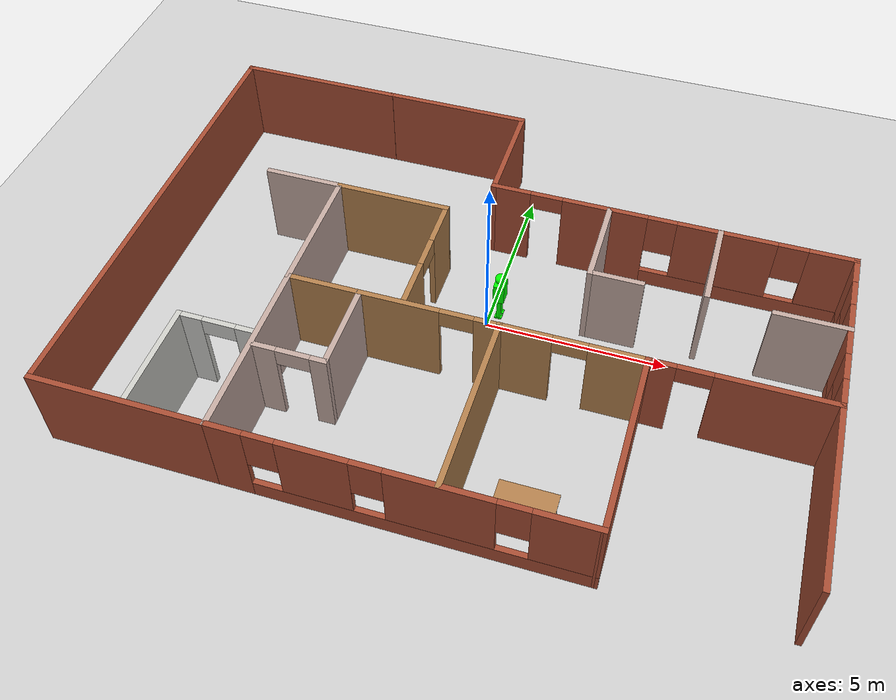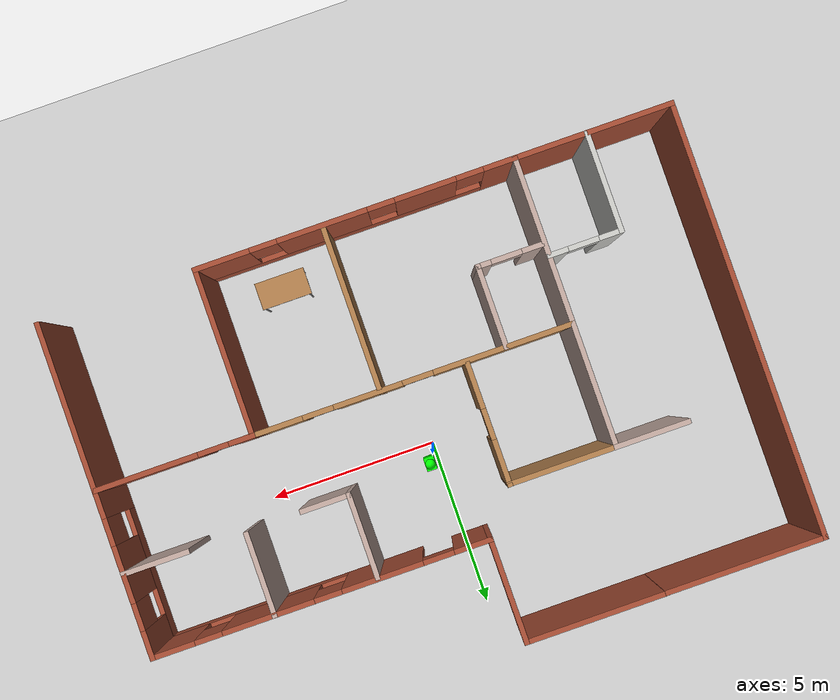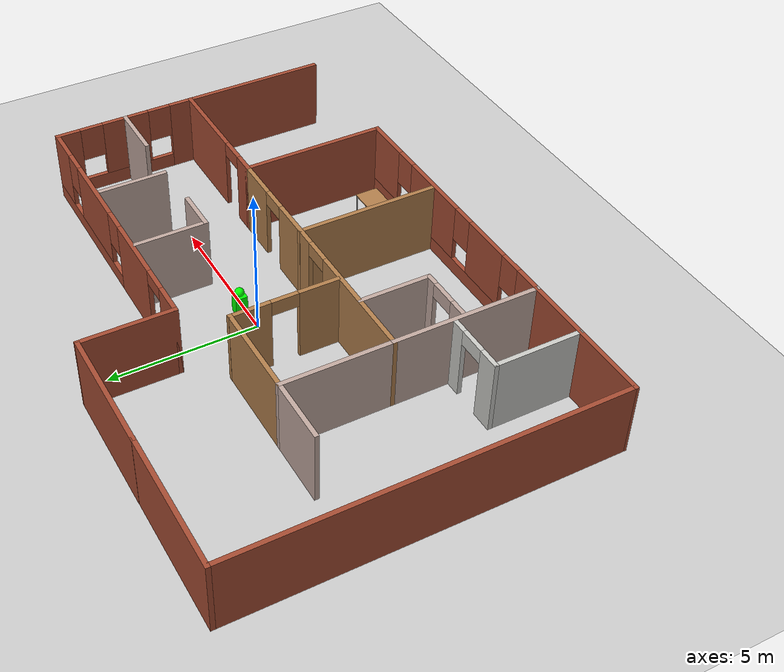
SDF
<sdf version="1.7">
 <world name="default">
  <model name="ground_plane">
   <static>1</static>
   <link name="link">
    <collision name="collision">
     <geometry><plane><normal>0 0 1</normal><size>100 100</size></plane></geometry>
     <surface>
      <contact><collide_bitmask>65535</collide_bitmask></contact>
      <friction><ode><mu>100</mu><mu2>50</mu2></ode></friction>
     </surface>
    </collision>
    <visual name="visual">
     <cast_shadows>0</cast_shadows>
     <geometry><plane><normal>0 0 1</normal><size>100 100</size></plane></geometry>
     <material>
      <script><uri>file://media/materials/scripts/gazebo.material</uri><name>Gazebo/Grey</name></script>
     </material>
    </visual>
   </link>
  </model>
  <model name="Building">
   <pose>-0.10758 -0.44687 0 0 -0 0</pose>
   <link name="Wall_12">
    <collision name="Wall_12_Collision">
     <geometry><box><size>4.26766 0.15 2.5</size></box></geometry>
     <pose>0 0 1.25 0 -0 0</pose>
    </collision>
    <visual name="Wall_12_Visual">
     <pose>0 0 1.25 0 -0 0</pose>
     <geometry><box><size>4.26766 0.15 2.5</size></box></geometry>
     <material>
      <script><uri>file://media/materials/scripts/gazebo.material</uri><name>Gazebo/Bricks</name></script>
      <ambient>1 1 1 1</ambient>
     </material>
     <meta><layer>0</layer></meta>
    </visual>
    <pose>-2.62625 6.34999 0 0 -0 3.14135</pose>
   </link>
   <link name="Wall_18">
    <collision name="Wall_18_Collision">
     <geometry><box><size>2.54909 0.15 2.5</size></box></geometry>
     <pose>0 0 1.25 0 -0 0</pose>
    </collision>
    <visual name="Wall_18_Visual">
     <pose>0 0 1.25 0 -0 0</pose>
     <geometry><box><size>2.54909 0.15 2.5</size></box></geometry>
     <material>
      <script><uri>file://media/materials/scripts/gazebo.material</uri><name>Gazebo/Grey</name></script>
      <ambient>0.760784 0.662745 0.627451 1</ambient>
     </material>
     <meta><layer>0</layer></meta>
    </visual>
    <pose>2.71291 2.11749 0 0 -0 -1.5708</pose>
   </link>
   <link name="Wall_19">
    <collision name="Wall_19_Collision">
     <geometry><box><size>1.5 0.15 2.5</size></box></geometry>
     <pose>0 0 1.25 0 -0 0</pose>
    </collision>
    <visual name="Wall_19_Visual">
     <pose>0 0 1.25 0 -0 0</pose>
     <geometry><box><size>1.5 0.15 2.5</size></box></geometry>
     <material>
      <script><uri>file://media/materials/scripts/gazebo.material</uri><name>Gazebo/Grey</name></script>
      <ambient>0.760784 0.662745 0.627451 1</ambient>
     </material>
     <meta><layer>0</layer></meta>
    </visual>
    <pose>3.39609 0.91795 0 0 -0 0</pose>
   </link>
   <link name="Wall_22">
    <collision name="Wall_22_Collision">
     <geometry><box><size>2 0.15 2.5</size></box></geometry>
     <pose>0 0 1.25 0 -0 0</pose>
    </collision>
    <visual name="Wall_22_Visual">
     <pose>0 0 1.25 0 -0 0</pose>
     <geometry><box><size>2 0.15 2.5</size></box></geometry>
     <material>
      <script><uri>file://media/materials/scripts/gazebo.material</uri><name>Gazebo/Grey</name></script>
      <ambient>0.760784 0.662745 0.627451 1</ambient>
     </material>
     <meta><layer>0</layer></meta>
    </visual>
    <pose>8.36008 0.923269 0 0 -0 3.14159</pose>
   </link>
   <link name="Wall_24">
    <collision name="Wall_24_Collision">
     <geometry><box><size>2.5 0.15 2.5</size></box></geometry>
     <pose>0 0 1.25 0 -0 0</pose>
    </collision>
    <visual name="Wall_24_Visual">
     <pose>0 0 1.25 0 -0 0</pose>
     <geometry><box><size>2.5 0.15 2.5</size></box></geometry>
     <material>
      <script><uri>file://media/materials/scripts/gazebo.material</uri><name>Gazebo/Grey</name></script>
      <ambient>0.760784 0.662745 0.627451 1</ambient>
     </material>
     <meta><layer>0</layer></meta>
    </visual>
    <pose>5.7297 2.18472 0 0 -0 -1.5708</pose>
   </link>
   <link name="Wall_26">
    <collision name="Wall_26_Collision">
     <geometry><box><size>3.13696 0.15 2.5</size></box></geometry>
     <pose>0 0 1.25 0 -0 0</pose>
    </collision>
    <visual name="Wall_26_Visual">
     <pose>0 0 1.25 0 -0 0</pose>
     <geometry><box><size>3.13696 0.15 2.5</size></box></geometry>
     <material>
      <script><uri>file://media/materials/scripts/gazebo.material</uri><name>Gazebo/Bricks</name></script>
      <ambient>1 1 1 1</ambient>
     </material>
     <meta><layer>0</layer></meta>
    </visual>
    <pose>-0.567427 4.85601 0 0 -0 -1.5708</pose>
   </link>
   <link name="Wall_28">
    <collision name="Wall_28_Collision">
     <geometry><box><size>3.25 0.15 2.5</size></box></geometry>
     <pose>0 0 1.25 0 -0 0</pose>
    </collision>
    <visual name="Wall_28_Visual">
     <pose>0 0 1.25 0 -0 0</pose>
     <geometry><box><size>3.25 0.15 2.5</size></box></geometry>
     <material>
      <script><uri>file://media/materials/scripts/gazebo.material</uri><name>Gazebo/Wood</name></script>
      <ambient>1 1 1 1</ambient>
     </material>
     <meta><layer>0</layer></meta>
    </visual>
    <pose>-3.11962 2.09882 0 0 -0 0</pose>
   </link>
   <link name="Wall_29">
    <pose>-1.56764 0.350671 0 0 -0 -1.56967</pose>
    <visual name="Wall_29_Visual_0">
     <pose>-1.13949 0 1.25 0 -0 0</pose>
     <geometry><box><size>1.37522 0.15 2.5</size></box></geometry>
     <material>
      <script><uri>file://media/materials/scripts/gazebo.material</uri><name>Gazebo/Wood</name></script>
      <ambient>1 1 1 1</ambient>
     </material>
     <meta><layer>0</layer></meta>
    </visual>
    <collision name="Wall_29_Collision_0">
     <geometry><box><size>1.37522 0.15 2.5</size></box></geometry>
     <pose>-1.13949 0 1.25 0 -0 0</pose>
    </collision>
    <visual name="Wall_29_Visual_1">
     <pose>1.13761 0 1.25 0 -0 0</pose>
     <geometry><box><size>1.37899 0.15 2.5</size></box></geometry>
     <material>
      <script><uri>file://media/materials/scripts/gazebo.material</uri><name>Gazebo/Wood</name></script>
      <ambient>1 1 1 1</ambient>
     </material>
     <meta><layer>0</layer></meta>
    </visual>
    <collision name="Wall_29_Collision_1">
     <geometry><box><size>1.37899 0.15 2.5</size></box></geometry>
     <pose>1.13761 0 1.25 0 -0 0</pose>
    </collision>
    <visual name="Wall_29_Visual_2">
     <pose>-0.001883 0 2.25 0 -0 0</pose>
     <geometry><box><size>0.9 0.15 0.5</size></box></geometry>
     <material>
      <script><uri>file://media/materials/scripts/gazebo.material</uri><name>Gazebo/Wood</name></script>
      <ambient>1 1 1 1</ambient>
     </material>
     <meta><layer>0</layer></meta>
    </visual>
    <collision name="Wall_29_Collision_2">
     <geometry><box><size>0.9 0.15 0.5</size></box></geometry>
     <pose>-0.001883 0 2.25 0 -0 0</pose>
    </collision>
   </link>
   <link name="Wall_3">
    <pose>9.28257 0.931014 0 0 -0 1.5708</pose>
    <visual name="Wall_3_Visual_0">
     <pose>-2.06336 0 1.25 0 -0 0</pose>
     <geometry><box><size>0.886317 0.15 2.5</size></box></geometry>
     <material>
      <script><uri>file://media/materials/scripts/gazebo.material</uri><name>Gazebo/Bricks</name></script>
      <ambient>1 1 1 1</ambient>
     </material>
     <meta><layer>0</layer></meta>
    </visual>
    <collision name="Wall_3_Collision_0">
     <geometry><box><size>0.886317 0.15 2.5</size></box></geometry>
     <pose>-2.06336 0 1.25 0 -0 0</pose>
    </collision>
    <visual name="Wall_3_Visual_1">
     <pose>0.443159 0 0.25 0 -0 0</pose>
     <geometry><box><size>4.12673 0.15 0.5</size></box></geometry>
     <material>
      <script><uri>file://media/materials/scripts/gazebo.material</uri><name>Gazebo/Bricks</name></script>
      <ambient>1 1 1 1</ambient>
     </material>
     <meta><layer>0</layer></meta>
    </visual>
    <collision name="Wall_3_Collision_1">
     <geometry><box><size>4.12673 0.15 0.5</size></box></geometry>
     <pose>0.443159 0 0.25 0 -0 0</pose>
    </collision>
    <visual name="Wall_3_Visual_2">
     <pose>0.013724 0 1.5 0 -0 0</pose>
     <geometry><box><size>1.66786 0.15 2</size></box></geometry>
     <material>
      <script><uri>file://media/materials/scripts/gazebo.material</uri><name>Gazebo/Bricks</name></script>
      <ambient>1 1 1 1</ambient>
     </material>
     <meta><layer>0</layer></meta>
    </visual>
    <collision name="Wall_3_Collision_2">
     <geometry><box><size>1.66786 0.15 2</size></box></geometry>
     <pose>0.013724 0 1.5 0 -0 0</pose>
    </collision>
    <visual name="Wall_3_Visual_3">
     <pose>2.07709 0 1.5 0 -0 0</pose>
     <geometry><box><size>0.858869 0.15 2</size></box></geometry>
     <material>
      <script><uri>file://media/materials/scripts/gazebo.material</uri><name>Gazebo/Bricks</name></script>
      <ambient>1 1 1 1</ambient>
     </material>
     <meta><layer>0</layer></meta>
    </visual>
    <collision name="Wall_3_Collision_3">
     <geometry><box><size>0.858869 0.15 2</size></box></geometry>
     <pose>2.07709 0 1.5 0 -0 0</pose>
    </collision>
    <visual name="Wall_3_Visual_4">
     <pose>-1.2202 0 1.9 0 -0 0</pose>
     <geometry><box><size>0.8 0.15 1.2</size></box></geometry>
     <material>
      <script><uri>file://media/materials/scripts/gazebo.material</uri><name>Gazebo/Bricks</name></script>
      <ambient>1 1 1 1</ambient>
     </material>
     <meta><layer>0</layer></meta>
    </visual>
    <collision name="Wall_3_Collision_4">
     <geometry><box><size>0.8 0.15 1.2</size></box></geometry>
     <pose>-1.2202 0 1.9 0 -0 0</pose>
    </collision>
    <visual name="Wall_3_Visual_5">
     <pose>1.24765 0 1.9 0 -0 0</pose>
     <geometry><box><size>0.8 0.15 1.2</size></box></geometry>
     <material>
      <script><uri>file://media/materials/scripts/gazebo.material</uri><name>Gazebo/Bricks</name></script>
      <ambient>1 1 1 1</ambient>
     </material>
     <meta><layer>0</layer></meta>
    </visual>
    <collision name="Wall_3_Collision_5">
     <geometry><box><size>0.8 0.15 1.2</size></box></geometry>
     <pose>1.24765 0 1.9 0 -0 0</pose>
    </collision>
   </link>
   <link name="Wall_31">
    <collision name="Wall_31_Collision">
     <geometry><box><size>5 0.15 2.5</size></box></geometry>
     <pose>0 0 1.25 0 -0 0</pose>
    </collision>
    <visual name="Wall_31_Visual">
     <pose>0 0 1.25 0 -0 0</pose>
     <geometry><box><size>5 0.15 2.5</size></box></geometry>
     <material>
      <script><uri>file://media/materials/scripts/gazebo.material</uri><name>Gazebo/Grey</name></script>
      <ambient>0.760784 0.662745 0.627451 1</ambient>
     </material>
     <meta><layer>0</layer></meta>
    </visual>
    <pose>-4.68508 -3.9245 0 0 -0 -1.5708</pose>
   </link>
   <link name="Wall_34">
    <collision name="Wall_34_Collision">
     <geometry><box><size>5 0.15 2.5</size></box></geometry>
     <pose>0 0 1.25 0 -0 0</pose>
    </collision>
    <visual name="Wall_34_Visual">
     <pose>0 0 1.25 0 -0 0</pose>
     <geometry><box><size>5 0.15 2.5</size></box></geometry>
     <material>
      <script><uri>file://media/materials/scripts/gazebo.material</uri><name>Gazebo/Bricks</name></script>
      <ambient>1 1 1 1</ambient>
     </material>
     <meta><layer>0</layer></meta>
    </visual>
    <pose>9.28257 -3.92551 0 0 -0 -1.5708</pose>
   </link>
   <link name="Wall_36">
    <pose>-0.001254 -6.35001 0 0 -0 -0.000107</pose>
    <visual name="Wall_36_Visual_0">
     <pose>-4.25927 0 1.25 0 -0 0</pose>
     <geometry><box><size>0.999123 0.15 2.5</size></box></geometry>
     <material>
      <script><uri>file://media/materials/scripts/gazebo.material</uri><name>Gazebo/Bricks</name></script>
      <ambient>1 1 1 1</ambient>
     </material>
     <meta><layer>0</layer></meta>
    </visual>
    <collision name="Wall_36_Collision_0">
     <geometry><box><size>0.999123 0.15 2.5</size></box></geometry>
     <pose>-4.25927 0 1.25 0 -0 0</pose>
    </collision>
    <visual name="Wall_36_Visual_1">
     <pose>0.499561 0 0.25 0 -0 0</pose>
     <geometry><box><size>8.51853 0.15 0.5</size></box></geometry>
     <material>
      <script><uri>file://media/materials/scripts/gazebo.material</uri><name>Gazebo/Bricks</name></script>
      <ambient>1 1 1 1</ambient>
     </material>
     <meta><layer>0</layer></meta>
    </visual>
    <collision name="Wall_36_Collision_1">
     <geometry><box><size>8.51853 0.15 0.5</size></box></geometry>
     <pose>0.499561 0 0.25 0 -0 0</pose>
    </collision>
    <visual name="Wall_36_Visual_2">
     <pose>-2.05731 0 1.5 0 -0 0</pose>
     <geometry><box><size>1.80478 0.15 2</size></box></geometry>
     <material>
      <script><uri>file://media/materials/scripts/gazebo.material</uri><name>Gazebo/Bricks</name></script>
      <ambient>1 1 1 1</ambient>
     </material>
     <meta><layer>0</layer></meta>
    </visual>
    <collision name="Wall_36_Collision_2">
     <geometry><box><size>1.80478 0.15 2</size></box></geometry>
     <pose>-2.05731 0 1.5 0 -0 0</pose>
    </collision>
    <visual name="Wall_36_Visual_3">
     <pose>0.968834 0 1.5 0 -0 0</pose>
     <geometry><box><size>2.64751 0.15 2</size></box></geometry>
     <material>
      <script><uri>file://media/materials/scripts/gazebo.material</uri><name>Gazebo/Bricks</name></script>
      <ambient>1 1 1 1</ambient>
     </material>
     <meta><layer>0</layer></meta>
    </visual>
    <collision name="Wall_36_Collision_3">
     <geometry><box><size>2.64751 0.15 2</size></box></geometry>
     <pose>0.968834 0 1.5 0 -0 0</pose>
    </collision>
    <visual name="Wall_36_Visual_4">
     <pose>3.92571 0 1.5 0 -0 0</pose>
     <geometry><box><size>1.66624 0.15 2</size></box></geometry>
     <material>
      <script><uri>file://media/materials/scripts/gazebo.material</uri><name>Gazebo/Bricks</name></script>
      <ambient>1 1 1 1</ambient>
     </material>
     <meta><layer>0</layer></meta>
    </visual>
    <collision name="Wall_36_Collision_4">
     <geometry><box><size>1.66624 0.15 2</size></box></geometry>
     <pose>3.92571 0 1.5 0 -0 0</pose>
    </collision>
    <visual name="Wall_36_Visual_5">
     <pose>-3.3597 0 1.9 0 -0 0</pose>
     <geometry><box><size>0.8 0.15 1.2</size></box></geometry>
     <material>
      <script><uri>file://media/materials/scripts/gazebo.material</uri><name>Gazebo/Bricks</name></script>
      <ambient>1 1 1 1</ambient>
     </material>
     <meta><layer>0</layer></meta>
    </visual>
    <collision name="Wall_36_Collision_5">
     <geometry><box><size>0.8 0.15 1.2</size></box></geometry>
     <pose>-3.3597 0 1.9 0 -0 0</pose>
    </collision>
    <visual name="Wall_36_Visual_6">
     <pose>-0.75492 0 1.9 0 -0 0</pose>
     <geometry><box><size>0.8 0.15 1.2</size></box></geometry>
     <material>
      <script><uri>file://media/materials/scripts/gazebo.material</uri><name>Gazebo/Bricks</name></script>
      <ambient>1 1 1 1</ambient>
     </material>
     <meta><layer>0</layer></meta>
    </visual>
    <collision name="Wall_36_Collision_6">
     <geometry><box><size>0.8 0.15 1.2</size></box></geometry>
     <pose>-0.75492 0 1.9 0 -0 0</pose>
    </collision>
    <visual name="Wall_36_Visual_7">
     <pose>2.69259 0 1.9 0 -0 0</pose>
     <geometry><box><size>0.8 0.15 1.2</size></box></geometry>
     <material>
      <script><uri>file://media/materials/scripts/gazebo.material</uri><name>Gazebo/Bricks</name></script>
      <ambient>1 1 1 1</ambient>
     </material>
     <meta><layer>0</layer></meta>
    </visual>
    <collision name="Wall_36_Collision_7">
     <geometry><box><size>0.8 0.15 1.2</size></box></geometry>
     <pose>2.69259 0 1.9 0 -0 0</pose>
    </collision>
   </link>
   <link name="Wall_37">
    <collision name="Wall_37_Collision">
     <geometry><box><size>5 0.15 2.5</size></box></geometry>
     <pose>0 0 1.25 0 -0 0</pose>
    </collision>
    <visual name="Wall_37_Visual">
     <pose>0 0 1.25 0 -0 0</pose>
     <geometry><box><size>5 0.15 2.5</size></box></geometry>
     <material>
      <script><uri>file://media/materials/scripts/gazebo.material</uri><name>Gazebo/Bricks</name></script>
      <ambient>1 1 1 1</ambient>
     </material>
     <meta><layer>0</layer></meta>
    </visual>
    <pose>4.68257 -3.92551 0 0 -0 1.5708</pose>
   </link>
   <link name="Wall_39">
    <collision name="Wall_39_Collision">
     <geometry><box><size>5 0.15 2.5</size></box></geometry>
     <pose>0 0 1.25 0 -0 0</pose>
    </collision>
    <visual name="Wall_39_Visual">
     <pose>0 0 1.25 0 -0 0</pose>
     <geometry><box><size>5 0.15 2.5</size></box></geometry>
     <material>
      <script><uri>file://media/materials/scripts/gazebo.material</uri><name>Gazebo/Wood</name></script>
      <ambient>1 1 1 1</ambient>
     </material>
     <meta><layer>0</layer></meta>
    </visual>
    <pose>0.958073 -3.91802 0 0 -0 -1.5708</pose>
   </link>
   <link name="Wall_41">
    <collision name="Wall_41_Collision">
     <geometry><box><size>4.75 0.15 2.5</size></box></geometry>
     <pose>0 0 1.25 0 -0 0</pose>
    </collision>
    <visual name="Wall_41_Visual">
     <pose>0 0 1.25 0 -0 0</pose>
     <geometry><box><size>4.75 0.15 2.5</size></box></geometry>
     <material>
      <script><uri>file://media/materials/scripts/gazebo.material</uri><name>Gazebo/Bricks</name></script>
      <ambient>1 1 1 1</ambient>
     </material>
     <meta><layer>0</layer></meta>
    </visual>
    <pose>-6.98508 6.34587 0 0 -0 3.14159</pose>
   </link>
   <link name="Wall_42">
    <collision name="Wall_42_Collision">
     <geometry><box><size>12.75 0.15 2.5</size></box></geometry>
     <pose>0 0 1.25 0 -0 0</pose>
    </collision>
    <visual name="Wall_42_Visual">
     <pose>0 0 1.25 0 -0 0</pose>
     <geometry><box><size>12.75 0.15 2.5</size></box></geometry>
     <material>
      <script><uri>file://media/materials/scripts/gazebo.material</uri><name>Gazebo/Bricks</name></script>
      <ambient>1 1 1 1</ambient>
     </material>
     <meta><layer>0</layer></meta>
    </visual>
    <pose>-9.28508 0.045872 0 0 -0 -1.5708</pose>
   </link>
   <link name="Wall_44">
    <collision name="Wall_44_Collision">
     <geometry><box><size>4.75 0.15 2.5</size></box></geometry>
     <pose>0 0 1.25 0 -0 0</pose>
    </collision>
    <visual name="Wall_44_Visual">
     <pose>0 0 1.25 0 -0 0</pose>
     <geometry><box><size>4.75 0.15 2.5</size></box></geometry>
     <material>
      <script><uri>file://media/materials/scripts/gazebo.material</uri><name>Gazebo/Bricks</name></script>
      <ambient>1 1 1 1</ambient>
     </material>
     <meta><layer>0</layer></meta>
    </visual>
    <pose>-6.98508 -6.3495 0 0 -0 3.14159</pose>
   </link>
   <link name="Wall_47">
    <collision name="Wall_47_Collision">
     <geometry><box><size>3.75 0.15 2.5</size></box></geometry>
     <pose>0 0 1.25 0 -0 0</pose>
    </collision>
    <visual name="Wall_47_Visual">
     <pose>0 0 1.25 0 -0 0</pose>
     <geometry><box><size>3.75 0.15 2.5</size></box></geometry>
     <material>
      <script><uri>file://media/materials/scripts/gazebo.material</uri><name>Gazebo/Grey</name></script>
      <ambient>0.760784 0.662745 0.627451 1</ambient>
     </material>
     <meta><layer>0</layer></meta>
    </visual>
    <pose>-4.68508 0.300498 0 0 -0 1.5708</pose>
   </link>
   <link name="Wall_5">
    <pose>4.35757 3.36254 0 0 -0 0</pose>
    <visual name="Wall_5_Visual_0">
     <pose>-4.43313 0 1.25 0 -0 0</pose>
     <geometry><box><size>1.13374 0.15 2.5</size></box></geometry>
     <material>
      <script><uri>file://media/materials/scripts/gazebo.material</uri><name>Gazebo/Bricks</name></script>
      <ambient>1 1 1 1</ambient>
     </material>
     <meta><layer>0</layer></meta>
    </visual>
    <collision name="Wall_5_Collision_0">
     <geometry><box><size>1.13374 0.15 2.5</size></box></geometry>
     <pose>-4.43313 0 1.25 0 -0 0</pose>
    </collision>
    <visual name="Wall_5_Visual_1">
     <pose>-1.77928 0 1.25 0 -0 0</pose>
     <geometry><box><size>2.37396 0.15 2.5</size></box></geometry>
     <material>
      <script><uri>file://media/materials/scripts/gazebo.material</uri><name>Gazebo/Bricks</name></script>
      <ambient>1 1 1 1</ambient>
     </material>
     <meta><layer>0</layer></meta>
    </visual>
    <collision name="Wall_5_Collision_1">
     <geometry><box><size>2.37396 0.15 2.5</size></box></geometry>
     <pose>-1.77928 0 1.25 0 -0 0</pose>
    </collision>
    <visual name="Wall_5_Visual_2">
     <pose>2.20385 0 0.25 0 -0 0</pose>
     <geometry><box><size>5.5923 0.15 0.5</size></box></geometry>
     <material>
      <script><uri>file://media/materials/scripts/gazebo.material</uri><name>Gazebo/Bricks</name></script>
      <ambient>1 1 1 1</ambient>
     </material>
     <meta><layer>0</layer></meta>
    </visual>
    <collision name="Wall_5_Collision_2">
     <geometry><box><size>5.5923 0.15 0.5</size></box></geometry>
     <pose>2.20385 0 0.25 0 -0 0</pose>
    </collision>
    <visual name="Wall_5_Visual_3">
     <pose>1.54973 0 1.5 0 -0 0</pose>
     <geometry><box><size>2.68406 0.15 2</size></box></geometry>
     <material>
      <script><uri>file://media/materials/scripts/gazebo.material</uri><name>Gazebo/Bricks</name></script>
      <ambient>1 1 1 1</ambient>
     </material>
     <meta><layer>0</layer></meta>
    </visual>
    <collision name="Wall_5_Collision_3">
     <geometry><box><size>2.68406 0.15 2</size></box></geometry>
     <pose>1.54973 0 1.5 0 -0 0</pose>
    </collision>
    <visual name="Wall_5_Visual_4">
     <pose>4.34588 0 1.5 0 -0 0</pose>
     <geometry><box><size>1.30824 0.15 2</size></box></geometry>
     <material>
      <script><uri>file://media/materials/scripts/gazebo.material</uri><name>Gazebo/Bricks</name></script>
      <ambient>1 1 1 1</ambient>
     </material>
     <meta><layer>0</layer></meta>
    </visual>
    <collision name="Wall_5_Collision_4">
     <geometry><box><size>1.30824 0.15 2</size></box></geometry>
     <pose>4.34588 0 1.5 0 -0 0</pose>
    </collision>
    <visual name="Wall_5_Visual_5">
     <pose>-0.1923 0 1.9 0 -0 0</pose>
     <geometry><box><size>0.8 0.15 1.2</size></box></geometry>
     <material>
      <script><uri>file://media/materials/scripts/gazebo.material</uri><name>Gazebo/Bricks</name></script>
      <ambient>1 1 1 1</ambient>
     </material>
     <meta><layer>0</layer></meta>
    </visual>
    <collision name="Wall_5_Collision_5">
     <geometry><box><size>0.8 0.15 1.2</size></box></geometry>
     <pose>-0.1923 0 1.9 0 -0 0</pose>
    </collision>
    <visual name="Wall_5_Visual_6">
     <pose>3.29176 0 1.9 0 -0 0</pose>
     <geometry><box><size>0.8 0.15 1.2</size></box></geometry>
     <material>
      <script><uri>file://media/materials/scripts/gazebo.material</uri><name>Gazebo/Bricks</name></script>
      <ambient>1 1 1 1</ambient>
     </material>
     <meta><layer>0</layer></meta>
    </visual>
    <collision name="Wall_5_Collision_6">
     <geometry><box><size>0.8 0.15 1.2</size></box></geometry>
     <pose>3.29176 0 1.9 0 -0 0</pose>
    </collision>
    <visual name="Wall_5_Visual_7">
     <pose>-3.41626 0 2.25 0 -0 0</pose>
     <geometry><box><size>0.9 0.15 0.5</size></box></geometry>
     <material>
      <script><uri>file://media/materials/scripts/gazebo.material</uri><name>Gazebo/Bricks</name></script>
      <ambient>1 1 1 1</ambient>
     </material>
     <meta><layer>0</layer></meta>
    </visual>
    <collision name="Wall_5_Collision_7">
     <geometry><box><size>0.9 0.15 0.5</size></box></geometry>
     <pose>-3.41626 0 2.25 0 -0 0</pose>
    </collision>
   </link>
   <link name="Wall_51">
    <pose>-5.74884 -3.48761 0 0 -0 3.14159</pose>
    <visual name="Wall_51_Visual_0">
     <pose>-0.814565 0 1.25 0 -0 0</pose>
     <geometry><box><size>0.62087 0.15 2.5</size></box></geometry>
     <material>
      <script><uri>file://media/materials/scripts/gazebo.material</uri><name>Gazebo/CeilingTiled</name></script>
      <ambient>0.760784 0.662745 0.627451 1</ambient>
     </material>
     <meta><layer>0</layer></meta>
    </visual>
    <collision name="Wall_51_Collision_0">
     <geometry><box><size>0.62087 0.15 2.5</size></box></geometry>
     <pose>-0.814565 0 1.25 0 -0 0</pose>
    </collision>
    <visual name="Wall_51_Visual_1">
     <pose>0.760435 0 1.25 0 -0 0</pose>
     <geometry><box><size>0.72913 0.15 2.5</size></box></geometry>
     <material>
      <script><uri>file://media/materials/scripts/gazebo.material</uri><name>Gazebo/CeilingTiled</name></script>
      <ambient>0.760784 0.662745 0.627451 1</ambient>
     </material>
     <meta><layer>0</layer></meta>
    </visual>
    <collision name="Wall_51_Collision_1">
     <geometry><box><size>0.72913 0.15 2.5</size></box></geometry>
     <pose>0.760435 0 1.25 0 -0 0</pose>
    </collision>
    <visual name="Wall_51_Visual_2">
     <pose>-0.05413 0 2.25 0 -0 0</pose>
     <geometry><box><size>0.9 0.15 0.5</size></box></geometry>
     <material>
      <script><uri>file://media/materials/scripts/gazebo.material</uri><name>Gazebo/CeilingTiled</name></script>
      <ambient>0.760784 0.662745 0.627451 1</ambient>
     </material>
     <meta><layer>0</layer></meta>
    </visual>
    <collision name="Wall_51_Collision_2">
     <geometry><box><size>0.9 0.15 0.5</size></box></geometry>
     <pose>-0.05413 0 2.25 0 -0 0</pose>
    </collision>
   </link>
   <link name="Wall_52">
    <collision name="Wall_52_Collision">
     <geometry><box><size>3 0.15 2.5</size></box></geometry>
     <pose>0 0 1.25 0 -0 0</pose>
    </collision>
    <visual name="Wall_52_Visual">
     <pose>0 0 1.25 0 -0 0</pose>
     <geometry><box><size>3 0.15 2.5</size></box></geometry>
     <material>
      <script><uri>file://media/materials/scripts/gazebo.material</uri><name>Gazebo/CeilingTiled</name></script>
      <ambient>0.760784 0.662745 0.627451 1</ambient>
     </material>
     <meta><layer>0</layer></meta>
    </visual>
    <pose>-6.79884 -4.91261 0 0 -0 -1.5708</pose>
   </link>
   <link name="Wall_54">
    <collision name="Wall_54_Collision">
     <geometry><box><size>2.5 0.15 2.5</size></box></geometry>
     <pose>0 0 1.25 0 -0 0</pose>
    </collision>
    <visual name="Wall_54_Visual">
     <pose>0 0 1.25 0 -0 0</pose>
     <geometry><box><size>2.5 0.15 2.5</size></box></geometry>
     <material>
      <script><uri>file://media/materials/scripts/gazebo.material</uri><name>Gazebo/Grey</name></script>
      <ambient>0.760784 0.662745 0.627451 1</ambient>
     </material>
     <meta><layer>0</layer></meta>
    </visual>
    <pose>-2.72782 -2.67582 0 0 -0 -1.5708</pose>
   </link>
   <link name="Wall_55">
    <pose>-3.65282 -3.85082 0 0 -0 3.14159</pose>
    <visual name="Wall_55_Visual_0">
     <pose>-0.769257 0 1.25 0 -0 0</pose>
     <geometry><box><size>0.461487 0.15 2.5</size></box></geometry>
     <material>
      <script><uri>file://media/materials/scripts/gazebo.material</uri><name>Gazebo/Grey</name></script>
      <ambient>0.760784 0.662745 0.627451 1</ambient>
     </material>
     <meta><layer>0</layer></meta>
    </visual>
    <collision name="Wall_55_Collision_0">
     <geometry><box><size>0.461487 0.15 2.5</size></box></geometry>
     <pose>-0.769257 0 1.25 0 -0 0</pose>
    </collision>
    <visual name="Wall_55_Visual_1">
     <pose>0.680743 0 1.25 0 -0 0</pose>
     <geometry><box><size>0.638513 0.15 2.5</size></box></geometry>
     <material>
      <script><uri>file://media/materials/scripts/gazebo.material</uri><name>Gazebo/Grey</name></script>
      <ambient>0.760784 0.662745 0.627451 1</ambient>
     </material>
     <meta><layer>0</layer></meta>
    </visual>
    <collision name="Wall_55_Collision_1">
     <geometry><box><size>0.638513 0.15 2.5</size></box></geometry>
     <pose>0.680743 0 1.25 0 -0 0</pose>
    </collision>
    <visual name="Wall_55_Visual_2">
     <pose>-0.088513 0 2.25 0 -0 0</pose>
     <geometry><box><size>0.9 0.15 0.5</size></box></geometry>
     <material>
      <script><uri>file://media/materials/scripts/gazebo.material</uri><name>Gazebo/Grey</name></script>
      <ambient>0.760784 0.662745 0.627451 1</ambient>
     </material>
     <meta><layer>0</layer></meta>
    </visual>
    <collision name="Wall_55_Collision_2">
     <geometry><box><size>0.9 0.15 0.5</size></box></geometry>
     <pose>-0.088513 0 2.25 0 -0 0</pose>
    </collision>
   </link>
   <link name="Wall_57">
    <pose>-0.001254 -1.50001 0 0 -0 3.14148</pose>
    <visual name="Wall_57_Visual_0">
     <pose>-3.98961 0 1.25 0 -0 0</pose>
     <geometry><box><size>1.53844 0.15 2.5</size></box></geometry>
     <material>
      <script><uri>file://media/materials/scripts/gazebo.material</uri><name>Gazebo/Wood</name></script>
      <ambient>1 1 1 1</ambient>
     </material>
     <meta><layer>0</layer></meta>
    </visual>
    <collision name="Wall_57_Collision_0">
     <geometry><box><size>1.53844 0.15 2.5</size></box></geometry>
     <pose>-3.98961 0 1.25 0 -0 0</pose>
    </collision>
    <visual name="Wall_57_Visual_1">
     <pose>-1.31362 0 1.25 0 -0 0</pose>
     <geometry><box><size>2.01352 0.15 2.5</size></box></geometry>
     <material>
      <script><uri>file://media/materials/scripts/gazebo.material</uri><name>Gazebo/Wood</name></script>
      <ambient>1 1 1 1</ambient>
     </material>
     <meta><layer>0</layer></meta>
    </visual>
    <collision name="Wall_57_Collision_1">
     <geometry><box><size>2.01352 0.15 2.5</size></box></geometry>
     <pose>-1.31362 0 1.25 0 -0 0</pose>
    </collision>
    <visual name="Wall_57_Visual_2">
     <pose>2.67598 0 1.25 0 -0 0</pose>
     <geometry><box><size>4.16569 0.15 2.5</size></box></geometry>
     <material>
      <script><uri>file://media/materials/scripts/gazebo.material</uri><name>Gazebo/Wood</name></script>
      <ambient>1 1 1 1</ambient>
     </material>
     <meta><layer>0</layer></meta>
    </visual>
    <collision name="Wall_57_Collision_2">
     <geometry><box><size>4.16569 0.15 2.5</size></box></geometry>
     <pose>2.67598 0 1.25 0 -0 0</pose>
    </collision>
    <visual name="Wall_57_Visual_3">
     <pose>-2.77038 0 2.25 0 -0 0</pose>
     <geometry><box><size>0.9 0.15 0.5</size></box></geometry>
     <material>
      <script><uri>file://media/materials/scripts/gazebo.material</uri><name>Gazebo/Wood</name></script>
      <ambient>1 1 1 1</ambient>
     </material>
     <meta><layer>0</layer></meta>
    </visual>
    <collision name="Wall_57_Collision_3">
     <geometry><box><size>0.9 0.15 0.5</size></box></geometry>
     <pose>-2.77038 0 2.25 0 -0 0</pose>
    </collision>
    <visual name="Wall_57_Visual_4">
     <pose>0.143136 0 2.25 0 -0 0</pose>
     <geometry><box><size>0.9 0.15 0.5</size></box></geometry>
     <material>
      <script><uri>file://media/materials/scripts/gazebo.material</uri><name>Gazebo/Wood</name></script>
      <ambient>1 1 1 1</ambient>
     </material>
     <meta><layer>0</layer></meta>
    </visual>
    <collision name="Wall_57_Collision_4">
     <geometry><box><size>0.9 0.15 0.5</size></box></geometry>
     <pose>0.143136 0 2.25 0 -0 0</pose>
    </collision>
   </link>
   <link name="Wall_59">
    <pose>6.98257 -1.50051 0 0 -0 0</pose>
    <visual name="Wall_59_Visual_0">
     <pose>-1.98813 0 1.25 0 -0 0</pose>
     <geometry><box><size>0.773745 0.15 2.5</size></box></geometry>
     <material>
      <script><uri>file://media/materials/scripts/gazebo.material</uri><name>Gazebo/Bricks</name></script>
      <ambient>1 1 1 1</ambient>
     </material>
     <meta><layer>0</layer></meta>
    </visual>
    <collision name="Wall_59_Collision_0">
     <geometry><box><size>0.773745 0.15 2.5</size></box></geometry>
     <pose>-1.98813 0 1.25 0 -0 0</pose>
    </collision>
    <visual name="Wall_59_Visual_1">
     <pose>0.836872 0 1.25 0 -0 0</pose>
     <geometry><box><size>3.07626 0.15 2.5</size></box></geometry>
     <material>
      <script><uri>file://media/materials/scripts/gazebo.material</uri><name>Gazebo/Bricks</name></script>
      <ambient>1 1 1 1</ambient>
     </material>
     <meta><layer>0</layer></meta>
    </visual>
    <collision name="Wall_59_Collision_1">
     <geometry><box><size>3.07626 0.15 2.5</size></box></geometry>
     <pose>0.836872 0 1.25 0 -0 0</pose>
    </collision>
    <visual name="Wall_59_Visual_2">
     <pose>-1.15125 0 2.25 0 -0 0</pose>
     <geometry><box><size>0.9 0.15 0.5</size></box></geometry>
     <material>
      <script><uri>file://media/materials/scripts/gazebo.material</uri><name>Gazebo/Bricks</name></script>
      <ambient>1 1 1 1</ambient>
     </material>
     <meta><layer>0</layer></meta>
    </visual>
    <collision name="Wall_59_Collision_2">
     <geometry><box><size>0.9 0.15 0.5</size></box></geometry>
     <pose>-1.15125 0 2.25 0 -0 0</pose>
    </collision>
   </link>
   <link name="Wall_61">
    <collision name="Wall_61_Collision">
     <geometry><box><size>2.25 0.15 2.5</size></box></geometry>
     <pose>0 0 1.25 0 -0 0</pose>
    </collision>
    <visual name="Wall_61_Visual">
     <pose>0 0 1.25 0 -0 0</pose>
     <geometry><box><size>2.25 0.15 2.5</size></box></geometry>
     <material>
      <script><uri>file://media/materials/scripts/gazebo.material</uri><name>Gazebo/Grey</name></script>
      <ambient>0.760784 0.662745 0.627451 1</ambient>
     </material>
     <meta><layer>0</layer></meta>
    </visual>
    <pose>-5.73508 2.1005 0 0 -0 3.14159</pose>
   </link>
   <static>1</static>
  </model>
  <model name="HumanoidRobot_0">
   <link name="link_1">
    <inertial>
     <mass>1</mass>
     <inertia>
      <ixx>0.166667</ixx>
      <ixy>0</ixy>
      <ixz>0</ixz>
      <iyy>0.166667</iyy>
      <iyz>0</iyz>
      <izz>0.166667</izz>
     </inertia>
    </inertial>
    <pose>0 -0.000833 0.458333 0 -0 0</pose>
    <visual name="visual">
     <geometry><box><size>0.3 0.4 0.6</size></box></geometry>
     <material>
      <lighting>1</lighting>
      <script><uri>file://media/materials/scripts/gazebo.material</uri><name>Gazebo/Grey</name></script>
      <shader type="pixel"><normal_map>__default__</normal_map></shader>
      <ambient>0 1 0 1</ambient>
      <diffuse>0.7 0.7 0.7 1</diffuse>
      <specular>0.01 0.01 0.01 1</specular>
      <emissive>0 0 0 1</emissive>
     </material>
    </visual>
    <collision name="collision">
     <geometry><box><size>0.3 0.4 0.6</size></box></geometry>
     <surface>
      <friction>
       <ode><mu>1</mu><mu2>1</mu2><fdir1>0 0 0</fdir1><slip1>0</slip1><slip2>0</slip2></ode>
       <torsional>
        <coefficient>1</coefficient>
        <patch_radius>0</patch_radius>
        <surface_radius>0</surface_radius>
        <use_patch_radius>1</use_patch_radius>
        <ode><slip>0</slip></ode>
       </torsional>
      </friction>
      <bounce><restitution_coefficient>0</restitution_coefficient><threshold>1e+06</threshold></bounce>
      <contact>
       <collide_without_contact>0</collide_without_contact>
       <collide_without_contact_bitmask>1</collide_without_contact_bitmask>
       <collide_bitmask>1</collide_bitmask>
       <ode>
        <soft_cfm>0</soft_cfm>
        <soft_erp>0.2</soft_erp>
        <kp>1e+13</kp>
        <kd>1</kd>
        <max_vel>0.01</max_vel>
        <min_depth>0</min_depth>
       </ode>
       <bullet>
        <split_impulse>1</split_impulse>
        <split_impulse_penetration_threshold>-0.01</split_impulse_penetration_threshold>
        <soft_cfm>0</soft_cfm>
        <soft_erp>0.2</soft_erp>
        <kp>1e+13</kp>
        <kd>1</kd>
       </bullet>
      </contact>
     </surface>
    </collision>
   </link>
   <link name="link_2">
    <inertial>
     <mass>1</mass>
     <inertia><ixx>0.145833</ixx><ixy>0</ixy><ixz>0</ixz><iyy>0.145833</iyy><iyz>0</iyz><izz>0.125</izz></inertia>
    </inertial>
    <pose>0 -0.100833 -0.166667 0 -0 0</pose>
    <visual name="visual">
     <geometry><cylinder><radius>0.06</radius><length>0.65</length></cylinder></geometry>
     <material>
      <lighting>1</lighting>
      <script><uri>file://media/materials/scripts/gazebo.material</uri><name>Gazebo/Grey</name></script>
      <shader type="pixel"><normal_map>__default__</normal_map></shader>
      <ambient>0 1 0 1</ambient>
      <diffuse>0.7 0.7 0.7 1</diffuse>
      <specular>0.01 0.01 0.01 1</specular>
      <emissive>0 0 0 1</emissive>
     </material>
    </visual>
    <collision name="collision">
     <geometry><cylinder><radius>0.06</radius><length>0.65</length></cylinder></geometry>
     <surface>
      <friction>
       <ode><mu>1</mu><mu2>1</mu2><fdir1>0 0 0</fdir1><slip1>0</slip1><slip2>0</slip2></ode>
       <torsional>
        <coefficient>1</coefficient>
        <patch_radius>0</patch_radius>
        <surface_radius>0</surface_radius>
        <use_patch_radius>1</use_patch_radius>
        <ode><slip>0</slip></ode>
       </torsional>
      </friction>
      <bounce><restitution_coefficient>0</restitution_coefficient><threshold>1e+06</threshold></bounce>
      <contact>
       <collide_without_contact>0</collide_without_contact>
       <collide_without_contact_bitmask>1</collide_without_contact_bitmask>
       <collide_bitmask>1</collide_bitmask>
       <ode>
        <soft_cfm>0</soft_cfm>
        <soft_erp>0.2</soft_erp>
        <kp>1e+13</kp>
        <kd>1</kd>
        <max_vel>0.01</max_vel>
        <min_depth>0</min_depth>
       </ode>
       <bullet>
        <split_impulse>1</split_impulse>
        <split_impulse_penetration_threshold>-0.01</split_impulse_penetration_threshold>
        <soft_cfm>0</soft_cfm>
        <soft_erp>0.2</soft_erp>
        <kp>1e+13</kp>
        <kd>1</kd>
       </bullet>
      </contact>
     </surface>
    </collision>
   </link>
   <link name="link_2_clone">
    <inertial>
     <mass>1</mass>
     <inertia><ixx>0.145833</ixx><ixy>0</ixy><ixz>0</ixz><iyy>0.145833</iyy><iyz>0</iyz><izz>0.125</izz></inertia>
    </inertial>
    <pose>0 0.099167 -0.166667 0 -0 0</pose>
    <visual name="visual">
     <geometry><cylinder><radius>0.06</radius><length>0.65</length></cylinder></geometry>
     <material>
      <lighting>1</lighting>
      <script><uri>file://media/materials/scripts/gazebo.material</uri><name>Gazebo/Grey</name></script>
      <shader type="pixel"><normal_map>__default__</normal_map></shader>
      <ambient>0 1 0 1</ambient>
      <diffuse>0.7 0.7 0.7 1</diffuse>
      <specular>0.01 0.01 0.01 1</specular>
      <emissive>0 0 0 1</emissive>
     </material>
    </visual>
    <collision name="collision">
     <geometry><cylinder><radius>0.06</radius><length>0.65</length></cylinder></geometry>
     <surface>
      <friction>
       <ode><mu>1</mu><mu2>1</mu2><fdir1>0 0 0</fdir1><slip1>0</slip1><slip2>0</slip2></ode>
       <torsional>
        <coefficient>1</coefficient>
        <patch_radius>0</patch_radius>
        <surface_radius>0</surface_radius>
        <use_patch_radius>1</use_patch_radius>
        <ode><slip>0</slip></ode>
       </torsional>
      </friction>
      <bounce><restitution_coefficient>0</restitution_coefficient><threshold>1e+06</threshold></bounce>
      <contact>
       <collide_without_contact>0</collide_without_contact>
       <collide_without_contact_bitmask>1</collide_without_contact_bitmask>
       <collide_bitmask>1</collide_bitmask>
       <ode>
        <soft_cfm>0</soft_cfm>
        <soft_erp>0.2</soft_erp>
        <kp>1e+13</kp>
        <kd>1</kd>
        <max_vel>0.01</max_vel>
        <min_depth>0</min_depth>
       </ode>
       <bullet>
        <split_impulse>1</split_impulse>
        <split_impulse_penetration_threshold>-0.01</split_impulse_penetration_threshold>
        <soft_cfm>0</soft_cfm>
        <soft_erp>0.2</soft_erp>
        <kp>1e+13</kp>
        <kd>1</kd>
       </bullet>
      </contact>
     </surface>
    </collision>
   </link>
   <link name="link_3">
    <inertial>
     <mass>1</mass>
     <inertia>
      <ixx>0.166667</ixx>
      <ixy>0</ixy>
      <ixz>0</ixz>
      <iyy>0.166667</iyy>
      <iyz>0</iyz>
      <izz>0.166667</izz>
     </inertia>
    </inertial>
    <pose>0 -0.095833 -0.516667 0 -0 0</pose>
    <visual name="visual">
     <geometry><box><size>0.2 0.14 0.05</size></box></geometry>
     <material>
      <lighting>1</lighting>
      <script><uri>file://media/materials/scripts/gazebo.material</uri><name>Gazebo/Grey</name></script>
      <shader type="pixel"><normal_map>__default__</normal_map></shader>
      <ambient>0 1 0 1</ambient>
      <diffuse>0.7 0.7 0.7 1</diffuse>
      <specular>0.01 0.01 0.01 1</specular>
      <emissive>0 0 0 1</emissive>
     </material>
    </visual>
    <collision name="collision">
     <geometry><box><size>0.2 0.14 0.05</size></box></geometry>
     <surface>
      <friction>
       <ode><mu>1</mu><mu2>1</mu2><fdir1>0 0 0</fdir1><slip1>0</slip1><slip2>0</slip2></ode>
       <torsional>
        <coefficient>1</coefficient>
        <patch_radius>0</patch_radius>
        <surface_radius>0</surface_radius>
        <use_patch_radius>1</use_patch_radius>
        <ode><slip>0</slip></ode>
       </torsional>
      </friction>
      <bounce><restitution_coefficient>0</restitution_coefficient><threshold>1e+06</threshold></bounce>
      <contact>
       <collide_without_contact>0</collide_without_contact>
       <collide_without_contact_bitmask>1</collide_without_contact_bitmask>
       <collide_bitmask>1</collide_bitmask>
       <ode>
        <soft_cfm>0</soft_cfm>
        <soft_erp>0.2</soft_erp>
        <kp>1e+13</kp>
        <kd>1</kd>
        <max_vel>0.01</max_vel>
        <min_depth>0</min_depth>
       </ode>
       <bullet>
        <split_impulse>1</split_impulse>
        <split_impulse_penetration_threshold>-0.01</split_impulse_penetration_threshold>
        <soft_cfm>0</soft_cfm>
        <soft_erp>0.2</soft_erp>
        <kp>1e+13</kp>
        <kd>1</kd>
       </bullet>
      </contact>
     </surface>
    </collision>
   </link>
   <link name="link_3_clone">
    <inertial>
     <mass>1</mass>
     <inertia>
      <ixx>0.166667</ixx>
      <ixy>0</ixy>
      <ixz>0</ixz>
      <iyy>0.166667</iyy>
      <iyz>0</iyz>
      <izz>0.166667</izz>
     </inertia>
    </inertial>
    <pose>0 0.099167 -0.516667 0 -0 0</pose>
    <visual name="visual">
     <geometry><box><size>0.2 0.14 0.05</size></box></geometry>
     <material>
      <lighting>1</lighting>
      <script><uri>file://media/materials/scripts/gazebo.material</uri><name>Gazebo/Grey</name></script>
      <shader type="pixel"><normal_map>__default__</normal_map></shader>
      <ambient>0 1 0 1</ambient>
      <diffuse>0.7 0.7 0.7 1</diffuse>
      <specular>0.01 0.01 0.01 1</specular>
      <emissive>0 0 0 1</emissive>
     </material>
    </visual>
    <collision name="collision">
     <geometry><box><size>0.2 0.14 0.05</size></box></geometry>
     <surface>
      <friction>
       <ode><mu>1</mu><mu2>1</mu2><fdir1>0 0 0</fdir1><slip1>0</slip1><slip2>0</slip2></ode>
       <torsional>
        <coefficient>1</coefficient>
        <patch_radius>0</patch_radius>
        <surface_radius>0</surface_radius>
        <use_patch_radius>1</use_patch_radius>
        <ode><slip>0</slip></ode>
       </torsional>
      </friction>
      <bounce><restitution_coefficient>0</restitution_coefficient><threshold>1e+06</threshold></bounce>
      <contact>
       <collide_without_contact>0</collide_without_contact>
       <collide_without_contact_bitmask>1</collide_without_contact_bitmask>
       <collide_bitmask>1</collide_bitmask>
       <ode>
        <soft_cfm>0</soft_cfm>
        <soft_erp>0.2</soft_erp>
        <kp>1e+13</kp>
        <kd>1</kd>
        <max_vel>0.01</max_vel>
        <min_depth>0</min_depth>
       </ode>
       <bullet>
        <split_impulse>1</split_impulse>
        <split_impulse_penetration_threshold>-0.01</split_impulse_penetration_threshold>
        <soft_cfm>0</soft_cfm>
        <soft_erp>0.2</soft_erp>
        <kp>1e+13</kp>
        <kd>1</kd>
       </bullet>
      </contact>
     </surface>
    </collision>
   </link>
   <link name="link_4">
    <inertial>
     <mass>1</mass>
     <inertia><ixx>0.1</ixx><ixy>0</ixy><ixz>0</ixz><iyy>0.1</iyy><iyz>0</iyz><izz>0.1</izz></inertia>
    </inertial>
    <pose>0 -0.000833 0.908333 0 -0 0</pose>
    <visual name="visual">
     <geometry><sphere><radius>0.15</radius></sphere></geometry>
     <material>
      <lighting>1</lighting>
      <script><uri>file://media/materials/scripts/gazebo.material</uri><name>Gazebo/Grey</name></script>
      <shader type="pixel"><normal_map>__default__</normal_map></shader>
      <ambient>0 1 0 1</ambient>
      <diffuse>0.7 0.7 0.7 1</diffuse>
      <specular>0.01 0.01 0.01 1</specular>
      <emissive>0 0 0 1</emissive>
     </material>
    </visual>
    <collision name="collision">
     <geometry><sphere><radius>0.15</radius></sphere></geometry>
     <surface>
      <friction>
       <ode><mu>1</mu><mu2>1</mu2><fdir1>0 0 0</fdir1><slip1>0</slip1><slip2>0</slip2></ode>
       <torsional>
        <coefficient>1</coefficient>
        <patch_radius>0</patch_radius>
        <surface_radius>0</surface_radius>
        <use_patch_radius>1</use_patch_radius>
        <ode><slip>0</slip></ode>
       </torsional>
      </friction>
      <bounce><restitution_coefficient>0</restitution_coefficient><threshold>1e+06</threshold></bounce>
      <contact>
       <collide_without_contact>0</collide_without_contact>
       <collide_without_contact_bitmask>1</collide_without_contact_bitmask>
       <collide_bitmask>1</collide_bitmask>
       <ode>
        <soft_cfm>0</soft_cfm>
        <soft_erp>0.2</soft_erp>
        <kp>1e+13</kp>
        <kd>1</kd>
        <max_vel>0.01</max_vel>
        <min_depth>0</min_depth>
       </ode>
       <bullet>
        <split_impulse>1</split_impulse>
        <split_impulse_penetration_threshold>-0.01</split_impulse_penetration_threshold>
        <soft_cfm>0</soft_cfm>
        <soft_erp>0.2</soft_erp>
        <kp>1e+13</kp>
        <kd>1</kd>
       </bullet>
      </contact>
     </surface>
    </collision>
   </link>
   <joint name="link_1_JOINT_1" type="fixed">
    <parent>link_1</parent>
    <child>link_2</child>
    <physics>
     <ode><limit><cfm>0</cfm><erp>0.2</erp></limit><suspension><cfm>0</cfm><erp>0.2</erp></suspension></ode>
    </physics>
   </joint>
   <joint name="link_1_JOINT_2" type="fixed">
    <parent>link_1</parent>
    <child>link_2_clone</child>
    <physics>
     <ode><limit><cfm>0</cfm><erp>0.2</erp></limit><suspension><cfm>0</cfm><erp>0.2</erp></suspension></ode>
    </physics>
   </joint>
   <joint name="link_1_JOINT_7" type="fixed">
    <parent>link_1</parent>
    <child>link_4</child>
    <physics>
     <ode><limit><cfm>0</cfm><erp>0.2</erp></limit><suspension><cfm>0</cfm><erp>0.2</erp></suspension></ode>
    </physics>
   </joint>
   <joint name="link_2_JOINT_3" type="fixed">
    <parent>link_2</parent>
    <child>link_3</child>
    <physics>
     <ode><limit><cfm>0</cfm><erp>0.2</erp></limit><suspension><cfm>0</cfm><erp>0.2</erp></suspension></ode>
    </physics>
   </joint>
   <joint name="link_2_clone_JOINT_5" type="fixed">
    <parent>link_2_clone</parent>
    <child>link_3_clone</child>
    <physics>
     <ode><limit><cfm>0</cfm><erp>0.2</erp></limit><suspension><cfm>0</cfm><erp>0.2</erp></suspension></ode>
    </physics>
   </joint>
   <static>0</static>
   <pose>0.230477 0.483172 0.541667 -3e-06 -0 -0.001464</pose>
  </model>
  <model name="table">
   <static>1</static>
   <link name="link">
    <collision name="surface">
     <pose>0 0 1 0 -0 0</pose>
     <geometry><box><size>1.5 0.8 0.03</size></box></geometry>
     <surface><friction><ode><mu>0.6</mu><mu2>0.6</mu2></ode></friction></surface>
    </collision>
    <visual name="visual1">
     <pose>0 0 1 0 -0 0</pose>
     <geometry><box><size>1.5 0.8 0.03</size></box></geometry>
     <material>
      <script><uri>file://media/materials/scripts/gazebo.material</uri><name>Gazebo/Wood</name></script>
     </material>
    </visual>
    <collision name="front_left_leg">
     <pose>0.68 0.38 0.5 0 -0 0</pose>
     <geometry><cylinder><radius>0.02</radius><length>1</length></cylinder></geometry>
    </collision>
    <visual name="front_left_leg">
     <pose>0.68 0.38 0.5 0 -0 0</pose>
     <geometry><cylinder><radius>0.02</radius><length>1</length></cylinder></geometry>
     <material>
      <script><uri>file://media/materials/scripts/gazebo.material</uri><name>Gazebo/Grey</name></script>
     </material>
    </visual>
    <collision name="front_right_leg">
     <pose>0.68 -0.38 0.5 0 -0 0</pose>
     <geometry><cylinder><radius>0.02</radius><length>1</length></cylinder></geometry>
    </collision>
    <visual name="front_right_leg">
     <pose>0.68 -0.38 0.5 0 -0 0</pose>
     <geometry><cylinder><radius>0.02</radius><length>1</length></cylinder></geometry>
     <material>
      <script><uri>file://media/materials/scripts/gazebo.material</uri><name>Gazebo/Grey</name></script>
     </material>
    </visual>
    <collision name="back_right_leg">
     <pose>-0.68 -0.38 0.5 0 -0 0</pose>
     <geometry><cylinder><radius>0.02</radius><length>1</length></cylinder></geometry>
    </collision>
    <visual name="back_right_leg">
     <pose>-0.68 -0.38 0.5 0 -0 0</pose>
     <geometry><cylinder><radius>0.02</radius><length>1</length></cylinder></geometry>
     <material>
      <script><uri>file://media/materials/scripts/gazebo.material</uri><name>Gazebo/Grey</name></script>
     </material>
    </visual>
    <collision name="back_left_leg">
     <pose>-0.68 0.38 0.5 0 -0 0</pose>
     <geometry><cylinder><radius>0.02</radius><length>1</length></cylinder></geometry>
    </collision>
    <visual name="back_left_leg">
     <pose>-0.68 0.38 0.5 0 -0 0</pose>
     <geometry><cylinder><radius>0.02</radius><length>1</length></cylinder></geometry>
     <material>
      <script><uri>file://media/materials/scripts/gazebo.material</uri><name>Gazebo/Grey</name></script>
     </material>
    </visual>
   </link>
   <pose>2.60542 -5.72215 0 0 -0 0</pose>
  </model>
 </world>
</sdf>
